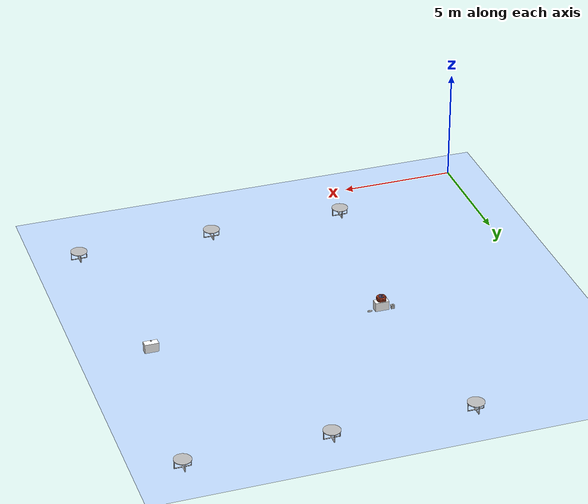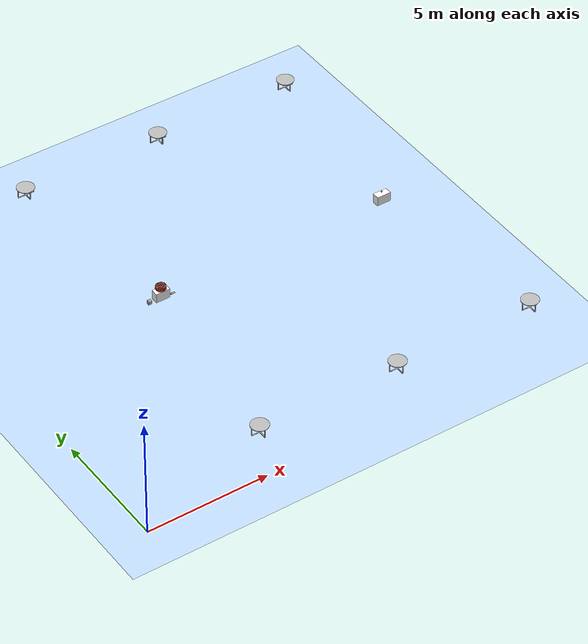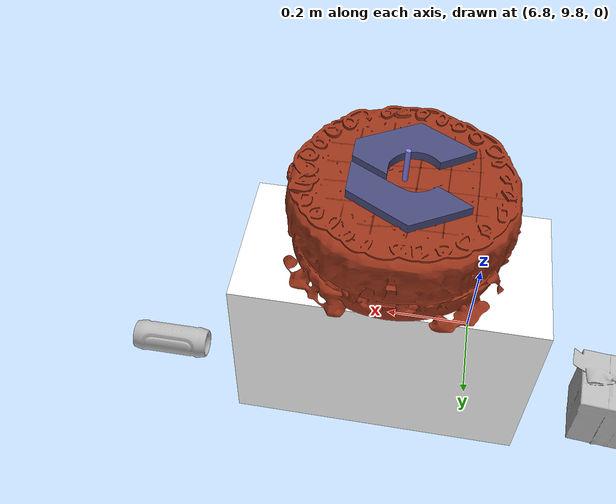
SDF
<sdf version="1.7">
 <world name="food_court">
  <plugin filename="gz-sim-physics-system" name="gz::sim::systems::Physics"/>
  <plugin filename="gz-sim-user-commands-system" name="gz::sim::systems::UserCommands"/>
  <plugin filename="gz-sim-scene-broadcaster-system" name="gz::sim::systems::SceneBroadcaster"/>
  <plugin filename="gz-sim-sensors-system" name="gz::sim::systems::Sensors">
   <render_engine>ogre2</render_engine>
  </plugin>
  <plugin filename="gz-sim-imu-system" name="gz::sim::systems::Imu"/>
  <physics name="fast_physics" type="ode">
   <max_step_size>0.02</max_step_size>
   <real_time_factor>1.0</real_time_factor>
   <real_time_update_rate>50</real_time_update_rate>
   <ode><solver><type>quick</type><iters>50</iters><sor>1.3</sor></solver></ode>
  </physics>
  <light type="directional" name="sun">
   <cast_shadows>false</cast_shadows>
   <pose>0 0 10 0 0 0</pose>
   <diffuse>0.8 0.8 0.8 1</diffuse>
   <specular>0.2 0.2 0.2 1</specular>
   <attenuation>
    <range>1000</range>
    <constant>0.9</constant>
    <linear>0.01</linear>
    <quadratic>0.001</quadratic>
   </attenuation>
   <direction>-0.5 0.1 -0.9</direction>
  </light>
  <model name="ground_plane">
   <static>true</static>
   <link name="link">
    <collision name="ground_collision">
     <geometry><plane><normal>0 0 1</normal><size>50 50</size></plane></geometry>
     <surface>
      <friction><mu>1.5</mu><mu2>1.5</mu2></friction>
      <contact><kp>1000000</kp><kd>1</kd></contact>
      <bounce><restitution_coefficient>0</restitution_coefficient></bounce>
     </surface>
    </collision>
    <visual name="ground_visual">
     <geometry><plane><normal>0 0 1</normal><size>50 50</size></plane></geometry>
     <material>
      <ambient>0.75 0.85 0.98 1</ambient>
      <diffuse>0.75 0.85 0.98 1</diffuse>
      <specular>0.05 0.05 0.05 1</specular>
     </material>
    </visual>
   </link>
  </model>
  <include><uri>model://stall_salad</uri><pose>7 10 0.25 0 0 0</pose></include>
  <include><uri>model://stall_drinks</uri><pose>17 10 0.25 0 0 0</pose></include>
  <include><uri>model://pepsi2</uri><name>cold_drink</name><pose>17 10 0.5 0 0 0</pose></include>
  <include><uri>model://CoffeeTable</uri><name>coffeetable1</name><pose>6 2 0 0 0 0</pose></include>
  <include><uri>model://CoffeeTable</uri><name>coffeetable2</name><pose>12 2 0 0 0 0</pose></include>
  <include><uri>model://CoffeeTable</uri><name>coffeetable3</name><pose>18 2 0 0 0 0</pose></include>
  <include><uri>model://CoffeeTable</uri><name>coffeetable4</name><pose>6 18 0 0 0 0</pose></include>
  <include><uri>model://CoffeeTable</uri><name>coffeetable5</name><pose>12 18 0 0 0 0</pose></include>
  <include><uri>model://CoffeeTable</uri><name>coffeetable6</name><pose>18 18 0 0 0 0</pose></include>
  <include><uri>model://Birthday_cake</uri><name>cake</name><pose>7.0 10 0.5 0 0 0</pose></include>
  <include><uri>model://JBL_Speaker</uri><name>speaker</name><pose>7.5 10 0 0 0 0</pose></include>
  <include><uri>model://gift_box</uri><name>gift</name><pose>6.5 10 0 0 0 0</pose></include>
 </world>
</sdf>

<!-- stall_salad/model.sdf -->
<sdf version="1.9">
    <model name="stall_salad">
        <static>true</static>
        <link name="link">
            <collision name="col">
                <geometry><box><size>0.6 0.3 0.4</size></box></geometry>
            </collision>
            <visual name="vis">
                <geometry><box><size>0.6 0.3 0.4</size></box></geometry>
                <material>
                    <ambient>1 1 1 1</ambient>
                    <diffuse>1 1 1 1</diffuse>
                    <specular>0 0 0 1</specular>
                    <pbr>
                        <metal>
                            <albedo_map>model://stall_salad/materials/textures/greensalads.png</albedo_map>
                            <roughness>1.0</roughness>
                            <metalness>0.0</metalness>
                        </metal>
                    </pbr>
                </material>
            </visual>
        </link>
    </model>
</sdf>

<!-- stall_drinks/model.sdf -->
<sdf version="1.9">
    <model name="stall_drinks">
        <static>true</static>
        <link name="link">
            <collision name="col">
                <geometry><box><size>0.6 0.3 0.4</size></box></geometry>
            </collision>
            <visual name="vis">
                <geometry><box><size>0.6 0.3 0.4</size></box></geometry>
                <material>
                    <ambient>1 1 1 1</ambient>
                    <diffuse>1 1 1 1</diffuse>
                    <specular>0 0 0 1</specular>
                    <pbr>
                        <metal>
                            <albedo_map>model://stall_drinks/materials/textures/colddrinks.png</albedo_map>
                            <roughness>1.0</roughness>
                            <metalness>0.0</metalness>
                        </metal>
                    </pbr>
                </material>
            </visual>
        </link>
    </model>
</sdf>

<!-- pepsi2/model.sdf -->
<sdf version="1.6">
<model name="pepsi2">
  <link name="link_0">

    <inertial>
      <mass>0.35</mass>
      <inertia>
        <ixx>0.000810</ixx>
        <iyy>0.000810</iyy>
        <izz>0.000306</izz>
        <ixy>0</ixy>
        <ixz>0</ixz>
        <iyz>0</iyz>
      </inertia>
    </inertial>

    <!-- VISUAL -->
    <visual name="visual">
      <geometry>
        <mesh>
          <uri>meshes/model.obj</uri>
          <scale>0.3 0.3 0.3</scale>
        </mesh>
      </geometry>
    </visual>

    <!-- COLLISION — simple box approximating the can -->
    <collision name="collision_0">
      <geometry>
        <box>
          <size>0.068 0.068 0.12</size>
        </box>
      </geometry>
      <surface>
        <friction>
          <ode>
            <mu>1.2</mu>
            <mu2>1.2</mu2>
            <fdir1>1 0 0</fdir1>
            <slip1>0.0</slip1>
            <slip2>0.0</slip2>
          </ode>
        </friction>
        <contact>
          <kp>100000</kp>
          <kd>10</kd>
        </contact>
      </surface>
    </collision>

  </link>
</model>
</sdf>

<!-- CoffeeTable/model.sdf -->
<sdf version="1.6">
  <model name='CoffeeTable'>
    <link name="body">
      <pose>0 0 0 0 0 0</pose>

      <visual name="visual">
        <geometry>
          <mesh>
            <uri>model://CoffeeTable/meshes/CoffeeTable.obj</uri>
            <scale>0.00817 0.00817 0.00817</scale>
          </mesh>
        </geometry>
      </visual>

      <collision name="collision">
        <geometry>
          <mesh>
            <uri>model://CoffeeTable/meshes/CoffeeTable.obj</uri>
            <scale>0.00817 0.00817 0.00817</scale>
          </mesh>
        </geometry>
      </collision>

    </link>
  </model>
</sdf>

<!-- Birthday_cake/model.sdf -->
<sdf version="1.6">
  <model name="birthday_cake">
    <static>false</static>
    <link name='link'>

      <inertial>
        <mass>0.1</mass>
        <inertia>
          <ixx>0.001</ixx>
          <iyy>0.001</iyy>
          <izz>0.001</izz>
          <ixy>0</ixy>
          <ixz>0</ixz>
          <iyz>0</iyz>
        </inertia>
      </inertial>

      <!-- COLLISION (simple cylinder, fast) -->
      <collision name="collision">
        <pose>0 0 0.055 0 0 0</pose>
        <geometry>
          <cylinder>
            <radius>0.15</radius>
            <length>0.2</length>
          </cylinder>
        </geometry>
        <surface>
          <friction>
            <ode>
              <mu>1.5</mu>
              <mu2>1.5</mu2>
            </ode>
          </friction>
          <contact>
            <ode>
              <kp>100000</kp>
              <kd>1.0</kd>
            </ode>
          </contact>
        </surface>
      </collision>

      <!-- VISUALS -->
      <visual name='Layer1'>
        <geometry>
          <mesh>
            <uri>meshes/cake.dae</uri>
            <submesh>
              <name>Layer1</name>
            </submesh>
            <scale>0.1 0.1 0.1</scale>
          </mesh>
        </geometry>
        <material>
          <ambient>0.6 0.2 0.1 1</ambient>
          <diffuse>0.6 0.2 0.1 1</diffuse>
          <specular>0.6 0.2 0.1 1</specular>
        </material>
      </visual>

      <visual name='Layer2'>
        <geometry>
          <mesh>
            <uri>meshes/cake.dae</uri>
            <submesh>
              <name>Layer2</name>
            </submesh>
            <scale>0.1 0.1 0.1</scale>
          </mesh>
        </geometry>
        <material>
          <ambient>0.7 0.3 0.2 1</ambient>
          <diffuse>0.6 0.2 0.1 1</diffuse>
          <specular>0.6 0.2 0.1 1</specular>
        </material>
      </visual>

      <visual name='Layer3'>
        <geometry>
          <mesh>
            <uri>meshes/cake.dae</uri>
            <submesh>
              <name>Layer3</name>
            </submesh>
            <scale>0.1 0.1 0.1</scale>
          </mesh>
        </geometry>
        <material>
          <ambient>0.5 0.2 0.1 1</ambient>
          <diffuse>0.6 0.2 0.1 1</diffuse>
          <specular>0.6 0.2 0.1 1</specular>
        </material>
      </visual>

      <visual name='Filling1'>
        <geometry>
          <mesh>
            <uri>meshes/cake.dae</uri>
            <submesh>
              <name>Filling1</name>
            </submesh>
            <scale>0.1 0.1 0.1</scale>
          </mesh>
        </geometry>
        <material>
          <ambient>1 1 1 1</ambient>
          <diffuse>0.28 0.29 0.48 1</diffuse>
          <specular>0.28 0.29 0.48 1</specular>
        </material>
      </visual>

      <visual name='Filling2'>
        <geometry>
          <mesh>
            <uri>meshes/cake.dae</uri>
            <submesh>
              <name>Filling2</name>
            </submesh>
            <scale>0.1 0.1 0.1</scale>
          </mesh>
        </geometry>
        <material>
          <ambient>1 1 1 1</ambient>
          <diffuse>0.28 0.29 0.48 1</diffuse>
          <specular>0.28 0.29 0.48 1</specular>
        </material>
      </visual>

      <visual name='Frosting1'>
        <geometry>
          <mesh>
            <uri>meshes/cake.dae</uri>
            <submesh>
              <name>Frosting1</name>
            </submesh>
            <scale>0.1 0.1 0.1</scale>
          </mesh>
        </geometry>
        <material>
          <ambient>0.28 0.29 0.48 1</ambient>
          <diffuse>0.28 0.29 0.48 1</diffuse>
          <specular>0.9 0.9 1.0</specular>
        </material>
      </visual>

      <visual name='Frosting2'>
        <geometry>
          <mesh>
            <uri>meshes/cake.dae</uri>
            <submesh>
              <name>Frosting2</name>
            </submesh>
            <scale>0.1 0.1 0.1</scale>
          </mesh>
        </geometry>
        <material>
          <ambient>0.28 0.29 0.48 1</ambient>
          <diffuse>0.28 0.29 0.48 1</diffuse>
          <specular>0.9 0.9 1.0</specular>
        </material>
      </visual>

      <visual name='Frosting3'>
        <geometry>
          <mesh>
            <uri>meshes/cake.dae</uri>
            <submesh>
              <name>Frosting3</name>
            </submesh>
            <scale>0.1 0.1 0.1</scale>
          </mesh>
        </geometry>
        <material>
          <ambient>0.8 0.8 0.9 1</ambient>
          <diffuse>0.8 0.8 0.9 1</diffuse>
          <specular>0.9 0.9 1.0</specular>
        </material>
      </visual>

      <visual name='Sprinkles'>
        <geometry>
          <mesh>
            <uri>meshes/cake.dae</uri>
            <submesh>
              <name>Sprinkles</name>
            </submesh>
            <scale>0.1 0.1 0.1</scale>
          </mesh>
        </geometry>
        <material>
          <ambient>0.28 0.29 0.48 1</ambient>
          <diffuse>0.28 0.29 0.48 1</diffuse>
          <specular>0.9 0.9 1.0 1</specular>
          <emissive>0.2 0.2 0.4 1</emissive>
        </material>
      </visual>

      <visual name='OpenRobotics'>
        <pose>-0.02 0 0.17 0 0 0</pose>
        <geometry>
          <mesh>
            <uri>meshes/openrobotics.dae</uri>
            <scale>5 5 5</scale>
          </mesh>
        </geometry>
        <material>
          <ambient>0.28 0.29 0.48 1</ambient>
          <diffuse>0.28 0.29 0.48 1</diffuse>
          <specular>0.9 0.9 1.0 1</specular>
        </material>
      </visual>

      <visual name='Candle1'>
        <pose>0.0 0 0.17 0 0 0</pose>
        <geometry>
          <cylinder>
            <length>0.1</length>
            <radius>0.005</radius>
          </cylinder>
        </geometry>
        <material>
          <ambient>0.5 0.5 0.9 1</ambient>
          <diffuse>0.5 0.5 0.9 1</diffuse>
          <specular>0.5 0.5 0.9 1</specular>
        </material>
      </visual>

      <particle_emitter name="candle" type="ellipsoid">
        <pose>0.0 0 0.23 0 -1.57 0</pose>
        <emitting>true</emitting>
        <size>0.02 0.02 0.04</size>
        <particle_size>0.01 0.01 0.005</particle_size>
        <lifetime>0.5</lifetime>
        <min_velocity>0.1</min_velocity>
        <max_velocity>0.2</max_velocity>
        <scale_rate>0.01</scale_rate>
        <rate>200</rate>
        <color_range_image>materials/textures/fire_colors.png</color_range_image>
        <material>
          <diffuse>0.9 0.3 0</diffuse>
          <specular>1.0 1.0 1.0</specular>
          <pbr>
            <metal>
              <albedo_map>materials/textures/fog.png</albedo_map>
            </metal>
          </pbr>
        </material>
      </particle_emitter>

    </link>
  </model>
</sdf>

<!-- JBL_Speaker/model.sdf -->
<sdf version="1.6">
  <model name="JBL_Charge_Speaker_portable_wireless_wired_Green">
    <static>false</static>
    <link name="link_0">

      <inertial>
        <mass>0.1</mass>
        <inertia>
          <ixx>0.001</ixx>
          <iyy>0.001</iyy>
          <izz>0.001</izz>
          <ixy>0</ixy>
          <ixz>0</ixz>
          <iyz>0</iyz>
        </inertia>
      </inertial>

      <visual name="visual">
      <pose>0 0 0.0025 0 0 0</pose>
        <geometry>
          <mesh>
            <uri>meshes/model.obj</uri>
          </mesh>
        </geometry>
      </visual>

      <collision name="collision_0">
        <geometry>
          <cylinder>
            <radius>0.05</radius>
            <length>0.12</length>
          </cylinder>
        </geometry>
        <surface>
          <friction>
            <ode>
              <mu>1.5</mu>
              <mu2>1.5</mu2>
            </ode>
          </friction>
          <contact>
            <ode>
              <kp>100000</kp>
              <kd>1.0</kd>
            </ode>
          </contact>
        </surface>
      </collision>

    </link>
  </model>
</sdf>

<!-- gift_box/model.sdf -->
<sdf version="1.6">
  <model name="KS_Chocolate_Cube_Box_Assortment_By_Neuhaus_2010_Ounces">
    <static>false</static>
    <link name="link_0">

      <inertial>
        <mass>0.1</mass>
        <inertia>
          <ixx>0.001</ixx>
          <iyy>0.001</iyy>
          <izz>0.001</izz>
          <ixy>0</ixy>
          <ixz>0</ixz>
          <iyz>0</iyz>
        </inertia>
      </inertial>

      <visual name="visual">
      <pose>0 0 0.0025 0 0 0</pose>
        <geometry>
          <mesh>
            <uri>meshes/model.obj</uri>
          </mesh>
        </geometry>
      </visual>

      <collision name="collision_0">
        <geometry>
          <box>
            <size>0.15 0.15 0.15</size>
          </box>
        </geometry>
        <surface>
          <friction>
            <ode>
              <mu>1.5</mu>
              <mu2>1.5</mu2>
            </ode>
          </friction>
          <contact>
            <ode>
              <kp>100000</kp>
              <kd>1.0</kd>
            </ode>
          </contact>
        </surface>
      </collision>

    </link>
  </model>
</sdf>
